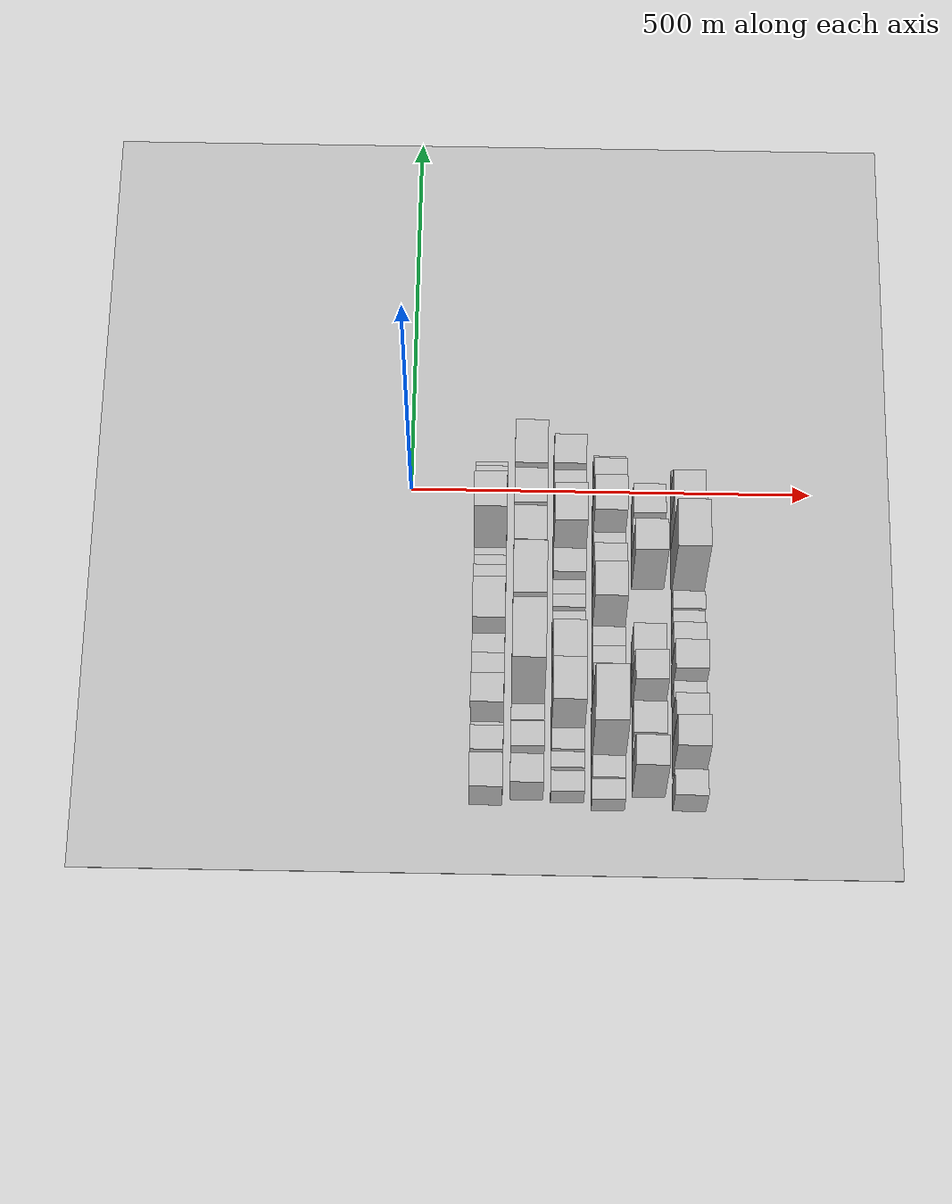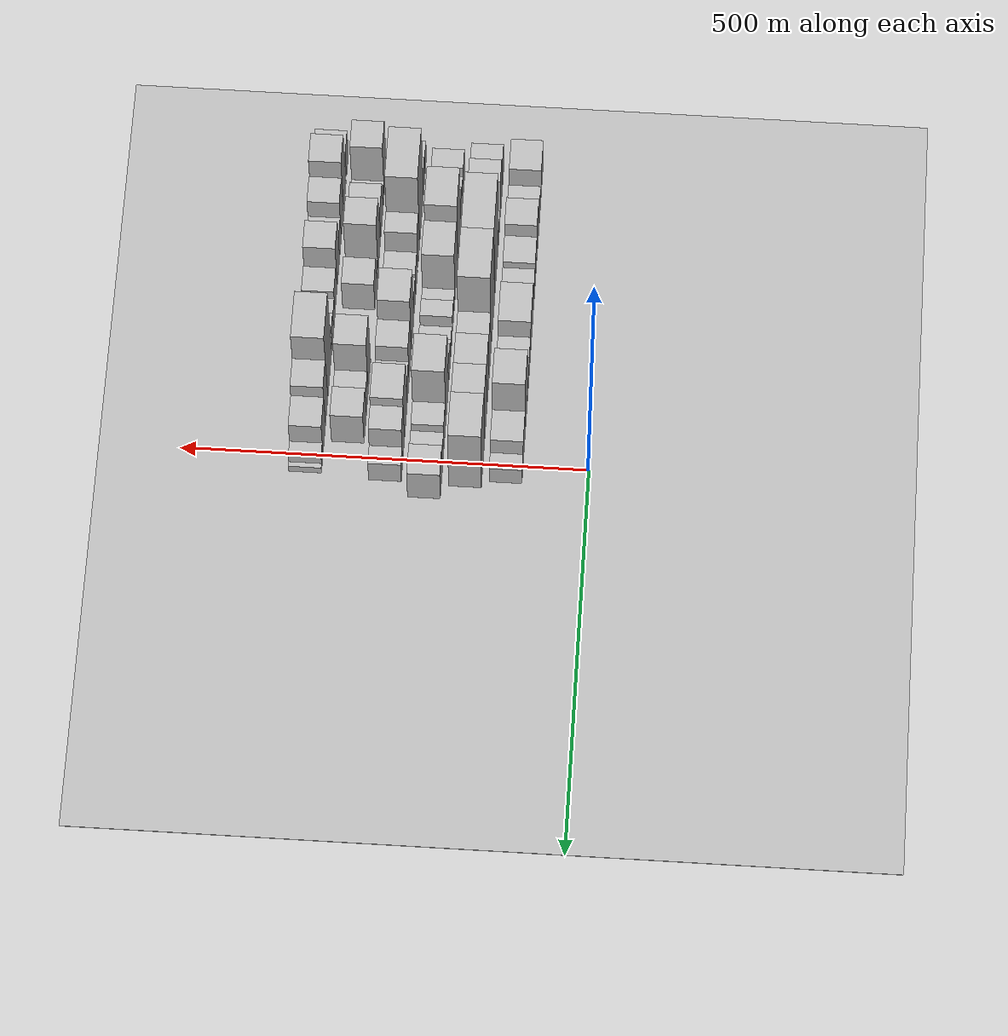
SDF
<sdf version="1.6">
 <world name="default">
  <include><name>ground_plane_1</name><uri>model://HANNAS_ground_plane</uri></include>
  <include>
   <name>ground_plane_2</name>
   <uri>model://HANNAS_ground_plane</uri>
   <pose>100 0 0  0 0 0</pose>
  </include>
  <model name="building_12">
   <static>1</static>
   <pose>100.0000 -392.6815 0 0.000000 0.000000 0.000000</pose>
   <link name="link">
    <pose>0 0 36.00 0 0 0</pose>
    <collision name="collision"><geometry><box><size>40.0000 42.4365 72.0000</size></box></geometry></collision>
    <visual name="visual">
     <cast_shadows>0</cast_shadows>
     <geometry><box><size>40.0000 42.4365 72.0000</size></box></geometry>
     <material>
      <script>
       <uri>model://HANNAS_wall/materials/scripts</uri>
       <uri>model://HANNAS_wall/materials/textures</uri>
       <name>vrc/HANNAS_wall</name>
      </script>
     </material>
    </visual>
   </link>
  </model>
  <model name="building_13">
   <static>1</static>
   <pose>100.0000 -365.9398 0 0.000000 0.000000 0.000000</pose>
   <link name="link">
    <pose>0 0 13.50 0 0 0</pose>
    <collision name="collision"><geometry><box><size>40.0000 11.0469 27.0000</size></box></geometry></collision>
    <visual name="visual">
     <cast_shadows>0</cast_shadows>
     <geometry><box><size>40.0000 11.0469 27.0000</size></box></geometry>
     <material>
      <script>
       <uri>model://HANNAS_wall/materials/scripts</uri>
       <uri>model://HANNAS_wall/materials/textures</uri>
       <name>vrc/HANNAS_wall</name>
      </script>
     </material>
    </visual>
   </link>
  </model>
  <model name="building_14">
   <static>1</static>
   <pose>100.0000 -345.2138 0 0.000000 0.000000 0.000000</pose>
   <link name="link">
    <pose>0 0 25.50 0 0 0</pose>
    <collision name="collision"><geometry><box><size>40.0000 30.4052 51.0000</size></box></geometry></collision>
    <visual name="visual">
     <cast_shadows>0</cast_shadows>
     <geometry><box><size>40.0000 30.4052 51.0000</size></box></geometry>
     <material>
      <script>
       <uri>model://HANNAS_wall/materials/scripts</uri>
       <uri>model://HANNAS_wall/materials/textures</uri>
       <name>vrc/HANNAS_wall</name>
      </script>
     </material>
    </visual>
   </link>
  </model>
  <model name="building_15">
   <static>1</static>
   <pose>100.0000 -323.7918 0 0.000000 0.000000 0.000000</pose>
   <link name="link">
    <pose>0 0 13.50 0 0 0</pose>
    <collision name="collision"><geometry><box><size>40.0000 12.4387 27.0000</size></box></geometry></collision>
    <visual name="visual">
     <cast_shadows>0</cast_shadows>
     <geometry><box><size>40.0000 12.4387 27.0000</size></box></geometry>
     <material>
      <script>
       <uri>model://HANNAS_wall/materials/scripts</uri>
       <uri>model://HANNAS_wall/materials/textures</uri>
       <name>vrc/HANNAS_wall</name>
      </script>
     </material>
    </visual>
   </link>
  </model>
  <model name="building_16">
   <static>1</static>
   <pose>100.0000 -299.1559 0 0.000000 0.000000 0.000000</pose>
   <link name="link">
    <pose>0 0 49.50 0 0 0</pose>
    <collision name="collision"><geometry><box><size>40.0000 36.8331 99.0000</size></box></geometry></collision>
    <visual name="visual">
     <cast_shadows>0</cast_shadows>
     <geometry><box><size>40.0000 36.8331 99.0000</size></box></geometry>
     <material>
      <script>
       <uri>model://HANNAS_wall/materials/scripts</uri>
       <uri>model://HANNAS_wall/materials/textures</uri>
       <name>vrc/HANNAS_wall</name>
      </script>
     </material>
    </visual>
   </link>
  </model>
  <model name="building_17">
   <static>1</static>
   <pose>100.0000 -262.3806 0 0.000000 0.000000 0.000000</pose>
   <link name="link">
    <pose>0 0 34.50 0 0 0</pose>
    <collision name="collision"><geometry><box><size>40.0000 36.7175 69.0000</size></box></geometry></collision>
    <visual name="visual">
     <cast_shadows>0</cast_shadows>
     <geometry><box><size>40.0000 36.7175 69.0000</size></box></geometry>
     <material>
      <script>
       <uri>model://HANNAS_wall/materials/scripts</uri>
       <uri>model://HANNAS_wall/materials/textures</uri>
       <name>vrc/HANNAS_wall</name>
      </script>
     </material>
    </visual>
   </link>
  </model>
  <model name="building_18">
   <static>1</static>
   <pose>100.0000 -228.6835 0 0.000000 0.000000 0.000000</pose>
   <link name="link">
    <pose>0 0 27.00 0 0 0</pose>
    <collision name="collision"><geometry><box><size>40.0000 30.6767 54.0000</size></box></geometry></collision>
    <visual name="visual">
     <cast_shadows>0</cast_shadows>
     <geometry><box><size>40.0000 30.6767 54.0000</size></box></geometry>
     <material>
      <script>
       <uri>model://HANNAS_wall/materials/scripts</uri>
       <uri>model://HANNAS_wall/materials/textures</uri>
       <name>vrc/HANNAS_wall</name>
      </script>
     </material>
    </visual>
   </link>
  </model>
  <model name="building_19">
   <static>1</static>
   <pose>100.0000 -179.8396 0 0.000000 0.000000 0.000000</pose>
   <link name="link">
    <pose>0 0 45.00 0 0 0</pose>
    <collision name="collision"><geometry><box><size>40.0000 53.0111 90.0000</size></box></geometry></collision>
    <visual name="visual">
     <cast_shadows>0</cast_shadows>
     <geometry><box><size>40.0000 53.0111 90.0000</size></box></geometry>
     <material>
      <script>
       <uri>model://HANNAS_wall/materials/scripts</uri>
       <uri>model://HANNAS_wall/materials/textures</uri>
       <name>vrc/HANNAS_wall</name>
      </script>
     </material>
    </visual>
   </link>
  </model>
  <model name="building_20">
   <static>1</static>
   <pose>100.0000 -136.5912 0 0.000000 0.000000 0.000000</pose>
   <link name="link">
    <pose>0 0 27.00 0 0 0</pose>
    <collision name="collision"><geometry><box><size>40.0000 27.4857 54.0000</size></box></geometry></collision>
    <visual name="visual">
     <cast_shadows>0</cast_shadows>
     <geometry><box><size>40.0000 27.4857 54.0000</size></box></geometry>
     <material>
      <script>
       <uri>model://HANNAS_wall/materials/scripts</uri>
       <uri>model://HANNAS_wall/materials/textures</uri>
       <name>vrc/HANNAS_wall</name>
      </script>
     </material>
    </visual>
   </link>
  </model>
  <model name="building_21">
   <static>1</static>
   <pose>100.0000 -112.8371 0 0.000000 0.000000 0.000000</pose>
   <link name="link">
    <pose>0 0 18.00 0 0 0</pose>
    <collision name="collision"><geometry><box><size>40.0000 20.0225 36.0000</size></box></geometry></collision>
    <visual name="visual">
     <cast_shadows>0</cast_shadows>
     <geometry><box><size>40.0000 20.0225 36.0000</size></box></geometry>
     <material>
      <script>
       <uri>model://HANNAS_wall/materials/scripts</uri>
       <uri>model://HANNAS_wall/materials/textures</uri>
       <name>vrc/HANNAS_wall</name>
      </script>
     </material>
    </visual>
   </link>
  </model>
  <model name="building_22">
   <static>1</static>
   <pose>100.0000 -91.7197 0 0.000000 0.000000 0.000000</pose>
   <link name="link">
    <pose>0 0 10.50 0 0 0</pose>
    <collision name="collision"><geometry><box><size>40.0000 10.2122 21.0000</size></box></geometry></collision>
    <visual name="visual">
     <cast_shadows>0</cast_shadows>
     <geometry><box><size>40.0000 10.2122 21.0000</size></box></geometry>
     <material>
      <script>
       <uri>model://HANNAS_wall/materials/scripts</uri>
       <uri>model://HANNAS_wall/materials/textures</uri>
       <name>vrc/HANNAS_wall</name>
      </script>
     </material>
    </visual>
   </link>
  </model>
  <model name="building_23">
   <static>1</static>
   <pose>100.0000 -63.3768 0 0.000000 0.000000 0.000000</pose>
   <link name="link">
    <pose>0 0 75.00 0 0 0</pose>
    <collision name="collision"><geometry><box><size>40.0000 46.4738 150.0000</size></box></geometry></collision>
    <visual name="visual">
     <cast_shadows>0</cast_shadows>
     <geometry><box><size>40.0000 46.4738 150.0000</size></box></geometry>
     <material>
      <script>
       <uri>model://HANNAS_wall/materials/scripts</uri>
       <uri>model://HANNAS_wall/materials/textures</uri>
       <name>vrc/HANNAS_wall</name>
      </script>
     </material>
    </visual>
   </link>
  </model>
  <model name="building_24">
   <static>1</static>
   <pose>100.0000 -19.8000 0 0.000000 0.000000 0.000000</pose>
   <link name="link">
    <pose>0 0 37.50 0 0 0</pose>
    <collision name="collision"><geometry><box><size>40.0000 40.6798 75.0000</size></box></geometry></collision>
    <visual name="visual">
     <cast_shadows>0</cast_shadows>
     <geometry><box><size>40.0000 40.6798 75.0000</size></box></geometry>
     <material>
      <script>
       <uri>model://HANNAS_wall/materials/scripts</uri>
       <uri>model://HANNAS_wall/materials/textures</uri>
       <name>vrc/HANNAS_wall</name>
      </script>
     </material>
    </visual>
   </link>
  </model>
  <model name="building_25">
   <static>1</static>
   <pose>100.0000 11.3328 0 0.000000 0.000000 0.000000</pose>
   <link name="link">
    <pose>0 0 19.50 0 0 0</pose>
    <collision name="collision"><geometry><box><size>40.0000 21.5857 39.0000</size></box></geometry></collision>
    <visual name="visual">
     <cast_shadows>0</cast_shadows>
     <geometry><box><size>40.0000 21.5857 39.0000</size></box></geometry>
     <material>
      <script>
       <uri>model://HANNAS_wall/materials/scripts</uri>
       <uri>model://HANNAS_wall/materials/textures</uri>
       <name>vrc/HANNAS_wall</name>
      </script>
     </material>
    </visual>
   </link>
  </model>
  <model name="building_62">
   <static>1</static>
   <pose>149.0000 -388.8332 0 0.000000 0.000000 0.000000</pose>
   <link name="link">
    <pose>0 0 34.50 0 0 0</pose>
    <collision name="collision"><geometry><box><size>40.0000 35.6817 69.0000</size></box></geometry></collision>
    <visual name="visual">
     <cast_shadows>0</cast_shadows>
     <geometry><box><size>40.0000 35.6817 69.0000</size></box></geometry>
     <material>
      <script>
       <uri>model://HANNAS_wall/materials/scripts</uri>
       <uri>model://HANNAS_wall/materials/textures</uri>
       <name>vrc/HANNAS_wall</name>
      </script>
     </material>
    </visual>
   </link>
  </model>
  <model name="building_63">
   <static>1</static>
   <pose>149.0000 -355.4125 0 0.000000 0.000000 0.000000</pose>
   <link name="link">
    <pose>0 0 48.00 0 0 0</pose>
    <collision name="collision"><geometry><box><size>40.0000 31.1596 96.0000</size></box></geometry></collision>
    <visual name="visual">
     <cast_shadows>0</cast_shadows>
     <geometry><box><size>40.0000 31.1596 96.0000</size></box></geometry>
     <material>
      <script>
       <uri>model://HANNAS_wall/materials/scripts</uri>
       <uri>model://HANNAS_wall/materials/textures</uri>
       <name>vrc/HANNAS_wall</name>
      </script>
     </material>
    </visual>
   </link>
  </model>
  <model name="building_64">
   <static>1</static>
   <pose>149.0000 -326.5224 0 0.000000 0.000000 0.000000</pose>
   <link name="link">
    <pose>0 0 15.00 0 0 0</pose>
    <collision name="collision"><geometry><box><size>40.0000 16.6204 30.0000</size></box></geometry></collision>
    <visual name="visual">
     <cast_shadows>0</cast_shadows>
     <geometry><box><size>40.0000 16.6204 30.0000</size></box></geometry>
     <material>
      <script>
       <uri>model://HANNAS_wall/materials/scripts</uri>
       <uri>model://HANNAS_wall/materials/textures</uri>
       <name>vrc/HANNAS_wall</name>
      </script>
     </material>
    </visual>
   </link>
  </model>
  <model name="building_65">
   <static>1</static>
   <pose>149.0000 -307.9409 0 0.000000 0.000000 0.000000</pose>
   <link name="link">
    <pose>0 0 19.50 0 0 0</pose>
    <collision name="collision"><geometry><box><size>40.0000 20.5426 39.0000</size></box></geometry></collision>
    <visual name="visual">
     <cast_shadows>0</cast_shadows>
     <geometry><box><size>40.0000 20.5426 39.0000</size></box></geometry>
     <material>
      <script>
       <uri>model://HANNAS_wall/materials/scripts</uri>
       <uri>model://HANNAS_wall/materials/textures</uri>
       <name>vrc/HANNAS_wall</name>
      </script>
     </material>
    </visual>
   </link>
  </model>
  <model name="building_66">
   <static>1</static>
   <pose>149.0000 -260.0572 0 0.000000 0.000000 0.000000</pose>
   <link name="link">
    <pose>0 0 99.00 0 0 0</pose>
    <collision name="collision"><geometry><box><size>40.0000 75.2248 198.0000</size></box></geometry></collision>
    <visual name="visual">
     <cast_shadows>0</cast_shadows>
     <geometry><box><size>40.0000 75.2248 198.0000</size></box></geometry>
     <material>
      <script>
       <uri>model://HANNAS_wall/materials/scripts</uri>
       <uri>model://HANNAS_wall/materials/textures</uri>
       <name>vrc/HANNAS_wall</name>
      </script>
     </material>
    </visual>
   </link>
  </model>
  <model name="building_67">
   <static>1</static>
   <pose>149.0000 -186.1572 0 0.000000 0.000000 0.000000</pose>
   <link name="link">
    <pose>0 0 102.00 0 0 0</pose>
    <collision name="collision"><geometry><box><size>40.0000 66.5752 204.0000</size></box></geometry></collision>
    <visual name="visual">
     <cast_shadows>0</cast_shadows>
     <geometry><box><size>40.0000 66.5752 204.0000</size></box></geometry>
     <material>
      <script>
       <uri>model://HANNAS_wall/materials/scripts</uri>
       <uri>model://HANNAS_wall/materials/textures</uri>
       <name>vrc/HANNAS_wall</name>
      </script>
     </material>
    </visual>
   </link>
  </model>
  <model name="building_68">
   <static>1</static>
   <pose>149.0000 -135.2835 0 0.000000 0.000000 0.000000</pose>
   <link name="link">
    <pose>0 0 55.50 0 0 0</pose>
    <collision name="collision"><geometry><box><size>40.0000 35.1722 111.0000</size></box></geometry></collision>
    <visual name="visual">
     <cast_shadows>0</cast_shadows>
     <geometry><box><size>40.0000 35.1722 111.0000</size></box></geometry>
     <material>
      <script>
       <uri>model://HANNAS_wall/materials/scripts</uri>
       <uri>model://HANNAS_wall/materials/textures</uri>
       <name>vrc/HANNAS_wall</name>
      </script>
     </material>
    </visual>
   </link>
  </model>
  <model name="building_69">
   <static>1</static>
   <pose>149.0000 -95.2438 0 0.000000 0.000000 0.000000</pose>
   <link name="link">
    <pose>0 0 61.50 0 0 0</pose>
    <collision name="collision"><geometry><box><size>40.0000 44.9072 123.0000</size></box></geometry></collision>
    <visual name="visual">
     <cast_shadows>0</cast_shadows>
     <geometry><box><size>40.0000 44.9072 123.0000</size></box></geometry>
     <material>
      <script>
       <uri>model://HANNAS_wall/materials/scripts</uri>
       <uri>model://HANNAS_wall/materials/textures</uri>
       <name>vrc/HANNAS_wall</name>
      </script>
     </material>
    </visual>
   </link>
  </model>
  <model name="building_70">
   <static>1</static>
   <pose>149.0000 -49.8725 0 0.000000 0.000000 0.000000</pose>
   <link name="link">
    <pose>0 0 66.00 0 0 0</pose>
    <collision name="collision"><geometry><box><size>40.0000 45.8354 132.0000</size></box></geometry></collision>
    <visual name="visual">
     <cast_shadows>0</cast_shadows>
     <geometry><box><size>40.0000 45.8354 132.0000</size></box></geometry>
     <material>
      <script>
       <uri>model://HANNAS_wall/materials/scripts</uri>
       <uri>model://HANNAS_wall/materials/textures</uri>
       <name>vrc/HANNAS_wall</name>
      </script>
     </material>
    </visual>
   </link>
  </model>
  <model name="building_71">
   <static>1</static>
   <pose>149.0000 1.8988 0 0.000000 0.000000 0.000000</pose>
   <link name="link">
    <pose>0 0 73.50 0 0 0</pose>
    <collision name="collision"><geometry><box><size>40.0000 57.7072 147.0000</size></box></geometry></collision>
    <visual name="visual">
     <cast_shadows>0</cast_shadows>
     <geometry><box><size>40.0000 57.7072 147.0000</size></box></geometry>
     <material>
      <script>
       <uri>model://HANNAS_wall/materials/scripts</uri>
       <uri>model://HANNAS_wall/materials/textures</uri>
       <name>vrc/HANNAS_wall</name>
      </script>
     </material>
    </visual>
   </link>
  </model>
  <model name="building_107">
   <static>1</static>
   <pose>198.0000 -396.4228 0 0.000000 0.000000 0.000000</pose>
   <link name="link">
    <pose>0 0 22.50 0 0 0</pose>
    <collision name="collision"><geometry><box><size>40.0000 25.8854 45.0000</size></box></geometry></collision>
    <visual name="visual">
     <cast_shadows>0</cast_shadows>
     <geometry><box><size>40.0000 25.8854 45.0000</size></box></geometry>
     <material>
      <script>
       <uri>model://HANNAS_wall/materials/scripts</uri>
       <uri>model://HANNAS_wall/materials/textures</uri>
       <name>vrc/HANNAS_wall</name>
      </script>
     </material>
    </visual>
   </link>
  </model>
  <model name="building_108">
   <static>1</static>
   <pose>198.0000 -366.4644 0 0.000000 0.000000 0.000000</pose>
   <link name="link">
    <pose>0 0 18.00 0 0 0</pose>
    <collision name="collision"><geometry><box><size>40.0000 20.0315 36.0000</size></box></geometry></collision>
    <visual name="visual">
     <cast_shadows>0</cast_shadows>
     <geometry><box><size>40.0000 20.0315 36.0000</size></box></geometry>
     <material>
      <script>
       <uri>model://HANNAS_wall/materials/scripts</uri>
       <uri>model://HANNAS_wall/materials/textures</uri>
       <name>vrc/HANNAS_wall</name>
      </script>
     </material>
    </visual>
   </link>
  </model>
  <model name="building_109">
   <static>1</static>
   <pose>198.0000 -343.0981 0 0.000000 0.000000 0.000000</pose>
   <link name="link">
    <pose>0 0 22.50 0 0 0</pose>
    <collision name="collision"><geometry><box><size>40.0000 26.7010 45.0000</size></box></geometry></collision>
    <visual name="visual">
     <cast_shadows>0</cast_shadows>
     <geometry><box><size>40.0000 26.7010 45.0000</size></box></geometry>
     <material>
      <script>
       <uri>model://HANNAS_wall/materials/scripts</uri>
       <uri>model://HANNAS_wall/materials/textures</uri>
       <name>vrc/HANNAS_wall</name>
      </script>
     </material>
    </visual>
   </link>
  </model>
  <model name="building_110">
   <static>1</static>
   <pose>198.0000 -303.1394 0 0.000000 0.000000 0.000000</pose>
   <link name="link">
    <pose>0 0 73.50 0 0 0</pose>
    <collision name="collision"><geometry><box><size>40.0000 53.2164 147.0000</size></box></geometry></collision>
    <visual name="visual">
     <cast_shadows>0</cast_shadows>
     <geometry><box><size>40.0000 53.2164 147.0000</size></box></geometry>
     <material>
      <script>
       <uri>model://HANNAS_wall/materials/scripts</uri>
       <uri>model://HANNAS_wall/materials/textures</uri>
       <name>vrc/HANNAS_wall</name>
      </script>
     </material>
    </visual>
   </link>
  </model>
  <model name="building_111">
   <static>1</static>
   <pose>198.0000 -244.0218 0 0.000000 0.000000 0.000000</pose>
   <link name="link">
    <pose>0 0 61.50 0 0 0</pose>
    <collision name="collision"><geometry><box><size>40.0000 47.0189 123.0000</size></box></geometry></collision>
    <visual name="visual">
     <cast_shadows>0</cast_shadows>
     <geometry><box><size>40.0000 47.0189 123.0000</size></box></geometry>
     <material>
      <script>
       <uri>model://HANNAS_wall/materials/scripts</uri>
       <uri>model://HANNAS_wall/materials/textures</uri>
       <name>vrc/HANNAS_wall</name>
      </script>
     </material>
    </visual>
   </link>
  </model>
  <model name="building_112">
   <static>1</static>
   <pose>198.0000 -210.6333 0 0.000000 0.000000 0.000000</pose>
   <link name="link">
    <pose>0 0 16.50 0 0 0</pose>
    <collision name="collision"><geometry><box><size>40.0000 19.7582 33.0000</size></box></geometry></collision>
    <visual name="visual">
     <cast_shadows>0</cast_shadows>
     <geometry><box><size>40.0000 19.7582 33.0000</size></box></geometry>
     <material>
      <script>
       <uri>model://HANNAS_wall/materials/scripts</uri>
       <uri>model://HANNAS_wall/materials/textures</uri>
       <name>vrc/HANNAS_wall</name>
      </script>
     </material>
    </visual>
   </link>
  </model>
  <model name="building_113">
   <static>1</static>
   <pose>198.0000 -189.3293 0 0.000000 0.000000 0.000000</pose>
   <link name="link">
    <pose>0 0 21.00 0 0 0</pose>
    <collision name="collision"><geometry><box><size>40.0000 22.8497 42.0000</size></box></geometry></collision>
    <visual name="visual">
     <cast_shadows>0</cast_shadows>
     <geometry><box><size>40.0000 22.8497 42.0000</size></box></geometry>
     <material>
      <script>
       <uri>model://HANNAS_wall/materials/scripts</uri>
       <uri>model://HANNAS_wall/materials/textures</uri>
       <name>vrc/HANNAS_wall</name>
      </script>
     </material>
    </visual>
   </link>
  </model>
  <model name="building_114">
   <static>1</static>
   <pose>198.0000 -160.2730 0 0.000000 0.000000 0.000000</pose>
   <link name="link">
    <pose>0 0 16.50 0 0 0</pose>
    <collision name="collision"><geometry><box><size>40.0000 17.2630 33.0000</size></box></geometry></collision>
    <visual name="visual">
     <cast_shadows>0</cast_shadows>
     <geometry><box><size>40.0000 17.2630 33.0000</size></box></geometry>
     <material>
      <script>
       <uri>model://HANNAS_wall/materials/scripts</uri>
       <uri>model://HANNAS_wall/materials/textures</uri>
       <name>vrc/HANNAS_wall</name>
      </script>
     </material>
    </visual>
   </link>
  </model>
  <model name="building_115">
   <static>1</static>
   <pose>198.0000 -142.2971 0 0.000000 0.000000 0.000000</pose>
   <link name="link">
    <pose>0 0 16.50 0 0 0</pose>
    <collision name="collision"><geometry><box><size>40.0000 18.6886 33.0000</size></box></geometry></collision>
    <visual name="visual">
     <cast_shadows>0</cast_shadows>
     <geometry><box><size>40.0000 18.6886 33.0000</size></box></geometry>
     <material>
      <script>
       <uri>model://HANNAS_wall/materials/scripts</uri>
       <uri>model://HANNAS_wall/materials/textures</uri>
       <name>vrc/HANNAS_wall</name>
      </script>
     </material>
    </visual>
   </link>
  </model>
  <model name="building_116">
   <static>1</static>
   <pose>198.0000 -117.3898 0 0.000000 0.000000 0.000000</pose>
   <link name="link">
    <pose>0 0 30.00 0 0 0</pose>
    <collision name="collision"><geometry><box><size>40.0000 31.1261 60.0000</size></box></geometry></collision>
    <visual name="visual">
     <cast_shadows>0</cast_shadows>
     <geometry><box><size>40.0000 31.1261 60.0000</size></box></geometry>
     <material>
      <script>
       <uri>model://HANNAS_wall/materials/scripts</uri>
       <uri>model://HANNAS_wall/materials/textures</uri>
       <name>vrc/HANNAS_wall</name>
      </script>
     </material>
    </visual>
   </link>
  </model>
  <model name="building_117">
   <static>1</static>
   <pose>198.0000 -77.1536 0 0.000000 0.000000 0.000000</pose>
   <link name="link">
    <pose>0 0 73.50 0 0 0</pose>
    <collision name="collision"><geometry><box><size>40.0000 49.3462 147.0000</size></box></geometry></collision>
    <visual name="visual">
     <cast_shadows>0</cast_shadows>
     <geometry><box><size>40.0000 49.3462 147.0000</size></box></geometry>
     <material>
      <script>
       <uri>model://HANNAS_wall/materials/scripts</uri>
       <uri>model://HANNAS_wall/materials/textures</uri>
       <name>vrc/HANNAS_wall</name>
      </script>
     </material>
    </visual>
   </link>
  </model>
  <model name="building_118">
   <static>1</static>
   <pose>198.0000 -37.0647 0 0.000000 0.000000 0.000000</pose>
   <link name="link">
    <pose>0 0 30.00 0 0 0</pose>
    <collision name="collision"><geometry><box><size>40.0000 30.8316 60.0000</size></box></geometry></collision>
    <visual name="visual">
     <cast_shadows>0</cast_shadows>
     <geometry><box><size>40.0000 30.8316 60.0000</size></box></geometry>
     <material>
      <script>
       <uri>model://HANNAS_wall/materials/scripts</uri>
       <uri>model://HANNAS_wall/materials/textures</uri>
       <name>vrc/HANNAS_wall</name>
      </script>
     </material>
    </visual>
   </link>
  </model>
  <model name="building_119">
   <static>1</static>
   <pose>198.0000 -5.0210 0 0.000000 0.000000 0.000000</pose>
   <link name="link">
    <pose>0 0 24.00 0 0 0</pose>
    <collision name="collision"><geometry><box><size>40.0000 27.2559 48.0000</size></box></geometry></collision>
    <visual name="visual">
     <cast_shadows>0</cast_shadows>
     <geometry><box><size>40.0000 27.2559 48.0000</size></box></geometry>
     <material>
      <script>
       <uri>model://HANNAS_wall/materials/scripts</uri>
       <uri>model://HANNAS_wall/materials/textures</uri>
       <name>vrc/HANNAS_wall</name>
      </script>
     </material>
    </visual>
   </link>
  </model>
  <model name="building_120">
   <static>1</static>
   <pose>198.0000 28.5804 0 0.000000 0.000000 0.000000</pose>
   <link name="link">
    <pose>0 0 34.50 0 0 0</pose>
    <collision name="collision"><geometry><box><size>40.0000 39.9469 69.0000</size></box></geometry></collision>
    <visual name="visual">
     <cast_shadows>0</cast_shadows>
     <geometry><box><size>40.0000 39.9469 69.0000</size></box></geometry>
     <material>
      <script>
       <uri>model://HANNAS_wall/materials/scripts</uri>
       <uri>model://HANNAS_wall/materials/textures</uri>
       <name>vrc/HANNAS_wall</name>
      </script>
     </material>
    </visual>
   </link>
  </model>
  <model name="building_158">
   <static>1</static>
   <pose>247.0000 -405.7730 0 0.000000 0.000000 0.000000</pose>
   <link name="link">
    <pose>0 0 22.50 0 0 0</pose>
    <collision name="collision"><geometry><box><size>40.0000 25.5367 45.0000</size></box></geometry></collision>
    <visual name="visual">
     <cast_shadows>0</cast_shadows>
     <geometry><box><size>40.0000 25.5367 45.0000</size></box></geometry>
     <material>
      <script>
       <uri>model://HANNAS_wall/materials/scripts</uri>
       <uri>model://HANNAS_wall/materials/textures</uri>
       <name>vrc/HANNAS_wall</name>
      </script>
     </material>
    </visual>
   </link>
  </model>
  <model name="building_159">
   <static>1</static>
   <pose>247.0000 -379.1604 0 0.000000 0.000000 0.000000</pose>
   <link name="link">
    <pose>0 0 25.50 0 0 0</pose>
    <collision name="collision"><geometry><box><size>40.0000 27.6885 51.0000</size></box></geometry></collision>
    <visual name="visual">
     <cast_shadows>0</cast_shadows>
     <geometry><box><size>40.0000 27.6885 51.0000</size></box></geometry>
     <material>
      <script>
       <uri>model://HANNAS_wall/materials/scripts</uri>
       <uri>model://HANNAS_wall/materials/textures</uri>
       <name>vrc/HANNAS_wall</name>
      </script>
     </material>
    </visual>
   </link>
  </model>
  <model name="building_160">
   <static>1</static>
   <pose>247.0000 -330.8500 0 0.000000 0.000000 0.000000</pose>
   <link name="link">
    <pose>0 0 88.50 0 0 0</pose>
    <collision name="collision"><geometry><box><size>40.0000 68.9324 177.0000</size></box></geometry></collision>
    <visual name="visual">
     <cast_shadows>0</cast_shadows>
     <geometry><box><size>40.0000 68.9324 177.0000</size></box></geometry>
     <material>
      <script>
       <uri>model://HANNAS_wall/materials/scripts</uri>
       <uri>model://HANNAS_wall/materials/textures</uri>
       <name>vrc/HANNAS_wall</name>
      </script>
     </material>
    </visual>
   </link>
  </model>
  <model name="building_161">
   <static>1</static>
   <pose>247.0000 -278.2361 0 0.000000 0.000000 0.000000</pose>
   <link name="link">
    <pose>0 0 46.50 0 0 0</pose>
    <collision name="collision"><geometry><box><size>40.0000 28.2955 93.0000</size></box></geometry></collision>
    <visual name="visual">
     <cast_shadows>0</cast_shadows>
     <geometry><box><size>40.0000 28.2955 93.0000</size></box></geometry>
     <material>
      <script>
       <uri>model://HANNAS_wall/materials/scripts</uri>
       <uri>model://HANNAS_wall/materials/textures</uri>
       <name>vrc/HANNAS_wall</name>
      </script>
     </material>
    </visual>
   </link>
  </model>
  <model name="building_162">
   <static>1</static>
   <pose>247.0000 -242.5583 0 0.000000 0.000000 0.000000</pose>
   <link name="link">
    <pose>0 0 27.00 0 0 0</pose>
    <collision name="collision"><geometry><box><size>40.0000 31.0600 54.0000</size></box></geometry></collision>
    <visual name="visual">
     <cast_shadows>0</cast_shadows>
     <geometry><box><size>40.0000 31.0600 54.0000</size></box></geometry>
     <material>
      <script>
       <uri>model://HANNAS_wall/materials/scripts</uri>
       <uri>model://HANNAS_wall/materials/textures</uri>
       <name>vrc/HANNAS_wall</name>
      </script>
     </material>
    </visual>
   </link>
  </model>
  <model name="building_163">
   <static>1</static>
   <pose>247.0000 -213.3095 0 0.000000 0.000000 0.000000</pose>
   <link name="link">
    <pose>0 0 24.00 0 0 0</pose>
    <collision name="collision"><geometry><box><size>40.0000 27.4376 48.0000</size></box></geometry></collision>
    <visual name="visual">
     <cast_shadows>0</cast_shadows>
     <geometry><box><size>40.0000 27.4376 48.0000</size></box></geometry>
     <material>
      <script>
       <uri>model://HANNAS_wall/materials/scripts</uri>
       <uri>model://HANNAS_wall/materials/textures</uri>
       <name>vrc/HANNAS_wall</name>
      </script>
     </material>
    </visual>
   </link>
  </model>
  <model name="building_164">
   <static>1</static>
   <pose>247.0000 -171.5485 0 0.000000 0.000000 0.000000</pose>
   <link name="link">
    <pose>0 0 67.50 0 0 0</pose>
    <collision name="collision"><geometry><box><size>40.0000 44.0845 135.0000</size></box></geometry></collision>
    <visual name="visual">
     <cast_shadows>0</cast_shadows>
     <geometry><box><size>40.0000 44.0845 135.0000</size></box></geometry>
     <material>
      <script>
       <uri>model://HANNAS_wall/materials/scripts</uri>
       <uri>model://HANNAS_wall/materials/textures</uri>
       <name>vrc/HANNAS_wall</name>
      </script>
     </material>
    </visual>
   </link>
  </model>
  <model name="building_165">
   <static>1</static>
   <pose>247.0000 -126.2416 0 0.000000 0.000000 0.000000</pose>
   <link name="link">
    <pose>0 0 46.50 0 0 0</pose>
    <collision name="collision"><geometry><box><size>40.0000 36.5292 93.0000</size></box></geometry></collision>
    <visual name="visual">
     <cast_shadows>0</cast_shadows>
     <geometry><box><size>40.0000 36.5292 93.0000</size></box></geometry>
     <material>
      <script>
       <uri>model://HANNAS_wall/materials/scripts</uri>
       <uri>model://HANNAS_wall/materials/textures</uri>
       <name>vrc/HANNAS_wall</name>
      </script>
     </material>
    </visual>
   </link>
  </model>
  <model name="building_166">
   <static>1</static>
   <pose>247.0000 -92.6367 0 0.000000 0.000000 0.000000</pose>
   <link name="link">
    <pose>0 0 27.00 0 0 0</pose>
    <collision name="collision"><geometry><box><size>40.0000 30.6807 54.0000</size></box></geometry></collision>
    <visual name="visual">
     <cast_shadows>0</cast_shadows>
     <geometry><box><size>40.0000 30.6807 54.0000</size></box></geometry>
     <material>
      <script>
       <uri>model://HANNAS_wall/materials/scripts</uri>
       <uri>model://HANNAS_wall/materials/textures</uri>
       <name>vrc/HANNAS_wall</name>
      </script>
     </material>
    </visual>
   </link>
  </model>
  <model name="building_167">
   <static>1</static>
   <pose>247.0000 -50.9040 0 0.000000 0.000000 0.000000</pose>
   <link name="link">
    <pose>0 0 58.50 0 0 0</pose>
    <collision name="collision"><geometry><box><size>40.0000 46.7846 117.0000</size></box></geometry></collision>
    <visual name="visual">
     <cast_shadows>0</cast_shadows>
     <geometry><box><size>40.0000 46.7846 117.0000</size></box></geometry>
     <material>
      <script>
       <uri>model://HANNAS_wall/materials/scripts</uri>
       <uri>model://HANNAS_wall/materials/textures</uri>
       <name>vrc/HANNAS_wall</name>
      </script>
     </material>
    </visual>
   </link>
  </model>
  <model name="building_168">
   <static>1</static>
   <pose>247.0000 -11.6134 0 0.000000 0.000000 0.000000</pose>
   <link name="link">
    <pose>0 0 48.00 0 0 0</pose>
    <collision name="collision"><geometry><box><size>40.0000 31.7965 96.0000</size></box></geometry></collision>
    <visual name="visual">
     <cast_shadows>0</cast_shadows>
     <geometry><box><size>40.0000 31.7965 96.0000</size></box></geometry>
     <material>
      <script>
       <uri>model://HANNAS_wall/materials/scripts</uri>
       <uri>model://HANNAS_wall/materials/textures</uri>
       <name>vrc/HANNAS_wall</name>
      </script>
     </material>
    </visual>
   </link>
  </model>
  <model name="building_169">
   <static>1</static>
   <pose>247.0000 16.3835 0 0.000000 0.000000 0.000000</pose>
   <link name="link">
    <pose>0 0 24.00 0 0 0</pose>
    <collision name="collision"><geometry><box><size>40.0000 24.1973 48.0000</size></box></geometry></collision>
    <visual name="visual">
     <cast_shadows>0</cast_shadows>
     <geometry><box><size>40.0000 24.1973 48.0000</size></box></geometry>
     <material>
      <script>
       <uri>model://HANNAS_wall/materials/scripts</uri>
       <uri>model://HANNAS_wall/materials/textures</uri>
       <name>vrc/HANNAS_wall</name>
      </script>
     </material>
    </visual>
   </link>
  </model>
  <model name="building_211">
   <static>1</static>
   <pose>296.0000 -382.2843 0 0.000000 0.000000 0.000000</pose>
   <link name="link">
    <pose>0 0 61.50 0 0 0</pose>
    <collision name="collision"><geometry><box><size>40.0000 37.3118 123.0000</size></box></geometry></collision>
    <visual name="visual">
     <cast_shadows>0</cast_shadows>
     <geometry><box><size>40.0000 37.3118 123.0000</size></box></geometry>
     <material>
      <script>
       <uri>model://HANNAS_wall/materials/scripts</uri>
       <uri>model://HANNAS_wall/materials/textures</uri>
       <name>vrc/HANNAS_wall</name>
      </script>
     </material>
    </visual>
   </link>
  </model>
  <model name="building_212">
   <static>1</static>
   <pose>296.0000 -353.0375 0 0.000000 0.000000 0.000000</pose>
   <link name="link">
    <pose>0 0 18.00 0 0 0</pose>
    <collision name="collision"><geometry><box><size>40.0000 21.1818 36.0000</size></box></geometry></collision>
    <visual name="visual">
     <cast_shadows>0</cast_shadows>
     <geometry><box><size>40.0000 21.1818 36.0000</size></box></geometry>
     <material>
      <script>
       <uri>model://HANNAS_wall/materials/scripts</uri>
       <uri>model://HANNAS_wall/materials/textures</uri>
       <name>vrc/HANNAS_wall</name>
      </script>
     </material>
    </visual>
   </link>
  </model>
  <model name="building_213">
   <static>1</static>
   <pose>296.0000 -322.3124 0 0.000000 0.000000 0.000000</pose>
   <link name="link">
    <pose>0 0 34.50 0 0 0</pose>
    <collision name="collision"><geometry><box><size>40.0000 40.2683 69.0000</size></box></geometry></collision>
    <visual name="visual">
     <cast_shadows>0</cast_shadows>
     <geometry><box><size>40.0000 40.2683 69.0000</size></box></geometry>
     <material>
      <script>
       <uri>model://HANNAS_wall/materials/scripts</uri>
       <uri>model://HANNAS_wall/materials/textures</uri>
       <name>vrc/HANNAS_wall</name>
      </script>
     </material>
    </visual>
   </link>
  </model>
  <model name="building_214">
   <static>1</static>
   <pose>296.0000 -275.5462 0 0.000000 0.000000 0.000000</pose>
   <link name="link">
    <pose>0 0 61.50 0 0 0</pose>
    <collision name="collision"><geometry><box><size>40.0000 37.2642 123.0000</size></box></geometry></collision>
    <visual name="visual">
     <cast_shadows>0</cast_shadows>
     <geometry><box><size>40.0000 37.2642 123.0000</size></box></geometry>
     <material>
      <script>
       <uri>model://HANNAS_wall/materials/scripts</uri>
       <uri>model://HANNAS_wall/materials/textures</uri>
       <name>vrc/HANNAS_wall</name>
      </script>
     </material>
    </visual>
   </link>
  </model>
  <model name="building_215">
   <static>1</static>
   <pose>296.0000 -247.9790 0 0.000000 0.000000 0.000000</pose>
   <link name="link">
    <pose>0 0 16.50 0 0 0</pose>
    <collision name="collision"><geometry><box><size>40.0000 17.8702 33.0000</size></box></geometry></collision>
    <visual name="visual">
     <cast_shadows>0</cast_shadows>
     <geometry><box><size>40.0000 17.8702 33.0000</size></box></geometry>
     <material>
      <script>
       <uri>model://HANNAS_wall/materials/scripts</uri>
       <uri>model://HANNAS_wall/materials/textures</uri>
       <name>vrc/HANNAS_wall</name>
      </script>
     </material>
    </visual>
   </link>
  </model>
  <model name="building_216">
   <static>1</static>
   <pose>296.0000 -220.7548 0 0.000000 0.000000 0.000000</pose>
   <link name="link">
    <pose>0 0 34.50 0 0 0</pose>
    <collision name="collision"><geometry><box><size>40.0000 36.5781 69.0000</size></box></geometry></collision>
    <visual name="visual">
     <cast_shadows>0</cast_shadows>
     <geometry><box><size>40.0000 36.5781 69.0000</size></box></geometry>
     <material>
      <script>
       <uri>model://HANNAS_wall/materials/scripts</uri>
       <uri>model://HANNAS_wall/materials/textures</uri>
       <name>vrc/HANNAS_wall</name>
      </script>
     </material>
    </visual>
   </link>
  </model>
  <model name="building_217">
   <static>1</static>
   <pose>296.0000 -110.6491 0 0.000000 0.000000 0.000000</pose>
   <link name="link">
    <pose>0 0 64.50 0 0 0</pose>
    <collision name="collision"><geometry><box><size>40.0000 40.5444 129.0000</size></box></geometry></collision>
    <visual name="visual">
     <cast_shadows>0</cast_shadows>
     <geometry><box><size>40.0000 40.5444 129.0000</size></box></geometry>
     <material>
      <script>
       <uri>model://HANNAS_wall/materials/scripts</uri>
       <uri>model://HANNAS_wall/materials/textures</uri>
       <name>vrc/HANNAS_wall</name>
      </script>
     </material>
    </visual>
   </link>
  </model>
  <model name="building_218">
   <static>1</static>
   <pose>296.0000 -74.7933 0 0.000000 0.000000 0.000000</pose>
   <link name="link">
    <pose>0 0 28.50 0 0 0</pose>
    <collision name="collision"><geometry><box><size>40.0000 31.1673 57.0000</size></box></geometry></collision>
    <visual name="visual">
     <cast_shadows>0</cast_shadows>
     <geometry><box><size>40.0000 31.1673 57.0000</size></box></geometry>
     <material>
      <script>
       <uri>model://HANNAS_wall/materials/scripts</uri>
       <uri>model://HANNAS_wall/materials/textures</uri>
       <name>vrc/HANNAS_wall</name>
      </script>
     </material>
    </visual>
   </link>
  </model>
  <model name="building_219">
   <static>1</static>
   <pose>296.0000 -39.6750 0 0.000000 0.000000 0.000000</pose>
   <link name="link">
    <pose>0 0 37.50 0 0 0</pose>
    <collision name="collision"><geometry><box><size>40.0000 39.0691 75.0000</size></box></geometry></collision>
    <visual name="visual">
     <cast_shadows>0</cast_shadows>
     <geometry><box><size>40.0000 39.0691 75.0000</size></box></geometry>
     <material>
      <script>
       <uri>model://HANNAS_wall/materials/scripts</uri>
       <uri>model://HANNAS_wall/materials/textures</uri>
       <name>vrc/HANNAS_wall</name>
      </script>
     </material>
    </visual>
   </link>
  </model>
  <model name="building_258">
   <static>1</static>
   <pose>345.0000 -401.3272 0 0.000000 0.000000 0.000000</pose>
   <link name="link">
    <pose>0 0 31.50 0 0 0</pose>
    <collision name="collision"><geometry><box><size>40.0000 32.2864 63.0000</size></box></geometry></collision>
    <visual name="visual">
     <cast_shadows>0</cast_shadows>
     <geometry><box><size>40.0000 32.2864 63.0000</size></box></geometry>
     <material>
      <script>
       <uri>model://HANNAS_wall/materials/scripts</uri>
       <uri>model://HANNAS_wall/materials/textures</uri>
       <name>vrc/HANNAS_wall</name>
      </script>
     </material>
    </visual>
   </link>
  </model>
  <model name="building_259">
   <static>1</static>
   <pose>345.0000 -358.0312 0 0.000000 0.000000 0.000000</pose>
   <link name="link">
    <pose>0 0 63.00 0 0 0</pose>
    <collision name="collision"><geometry><box><size>40.0000 38.3057 126.0000</size></box></geometry></collision>
    <visual name="visual">
     <cast_shadows>0</cast_shadows>
     <geometry><box><size>40.0000 38.3057 126.0000</size></box></geometry>
     <material>
      <script>
       <uri>model://HANNAS_wall/materials/scripts</uri>
       <uri>model://HANNAS_wall/materials/textures</uri>
       <name>vrc/HANNAS_wall</name>
      </script>
     </material>
    </visual>
   </link>
  </model>
  <model name="building_260">
   <static>1</static>
   <pose>345.0000 -317.3519 0 0.000000 0.000000 0.000000</pose>
   <link name="link">
    <pose>0 0 46.50 0 0 0</pose>
    <collision name="collision"><geometry><box><size>40.0000 35.0529 93.0000</size></box></geometry></collision>
    <visual name="visual">
     <cast_shadows>0</cast_shadows>
     <geometry><box><size>40.0000 35.0529 93.0000</size></box></geometry>
     <material>
      <script>
       <uri>model://HANNAS_wall/materials/scripts</uri>
       <uri>model://HANNAS_wall/materials/textures</uri>
       <name>vrc/HANNAS_wall</name>
      </script>
     </material>
    </visual>
   </link>
  </model>
  <model name="building_261">
   <static>1</static>
   <pose>345.0000 -285.2623 0 0.000000 0.000000 0.000000</pose>
   <link name="link">
    <pose>0 0 27.00 0 0 0</pose>
    <collision name="collision"><geometry><box><size>40.0000 29.1263 54.0000</size></box></geometry></collision>
    <visual name="visual">
     <cast_shadows>0</cast_shadows>
     <geometry><box><size>40.0000 29.1263 54.0000</size></box></geometry>
     <material>
      <script>
       <uri>model://HANNAS_wall/materials/scripts</uri>
       <uri>model://HANNAS_wall/materials/textures</uri>
       <name>vrc/HANNAS_wall</name>
      </script>
     </material>
    </visual>
   </link>
  </model>
  <model name="building_262">
   <static>1</static>
   <pose>345.0000 -252.2790 0 0.000000 0.000000 0.000000</pose>
   <link name="link">
    <pose>0 0 49.50 0 0 0</pose>
    <collision name="collision"><geometry><box><size>40.0000 36.8403 99.0000</size></box></geometry></collision>
    <visual name="visual">
     <cast_shadows>0</cast_shadows>
     <geometry><box><size>40.0000 36.8403 99.0000</size></box></geometry>
     <material>
      <script>
       <uri>model://HANNAS_wall/materials/scripts</uri>
       <uri>model://HANNAS_wall/materials/textures</uri>
       <name>vrc/HANNAS_wall</name>
      </script>
     </material>
    </visual>
   </link>
  </model>
  <model name="building_263">
   <static>1</static>
   <pose>345.0000 -212.1894 0 0.000000 0.000000 0.000000</pose>
   <link name="link">
    <pose>0 0 28.50 0 0 0</pose>
    <collision name="collision"><geometry><box><size>40.0000 33.3389 57.0000</size></box></geometry></collision>
    <visual name="visual">
     <cast_shadows>0</cast_shadows>
     <geometry><box><size>40.0000 33.3389 57.0000</size></box></geometry>
     <material>
      <script>
       <uri>model://HANNAS_wall/materials/scripts</uri>
       <uri>model://HANNAS_wall/materials/textures</uri>
       <name>vrc/HANNAS_wall</name>
      </script>
     </material>
    </visual>
   </link>
  </model>
  <model name="building_264">
   <static>1</static>
   <pose>345.0000 -184.3024 0 0.000000 0.000000 0.000000</pose>
   <link name="link">
    <pose>0 0 19.50 0 0 0</pose>
    <collision name="collision"><geometry><box><size>40.0000 22.4352 39.0000</size></box></geometry></collision>
    <visual name="visual">
     <cast_shadows>0</cast_shadows>
     <geometry><box><size>40.0000 22.4352 39.0000</size></box></geometry>
     <material>
      <script>
       <uri>model://HANNAS_wall/materials/scripts</uri>
       <uri>model://HANNAS_wall/materials/textures</uri>
       <name>vrc/HANNAS_wall</name>
      </script>
     </material>
    </visual>
   </link>
  </model>
  <model name="building_265">
   <static>1</static>
   <pose>345.0000 -161.4504 0 0.000000 0.000000 0.000000</pose>
   <link name="link">
    <pose>0 0 22.50 0 0 0</pose>
    <collision name="collision"><geometry><box><size>40.0000 23.2688 45.0000</size></box></geometry></collision>
    <visual name="visual">
     <cast_shadows>0</cast_shadows>
     <geometry><box><size>40.0000 23.2688 45.0000</size></box></geometry>
     <material>
      <script>
       <uri>model://HANNAS_wall/materials/scripts</uri>
       <uri>model://HANNAS_wall/materials/textures</uri>
       <name>vrc/HANNAS_wall</name>
      </script>
     </material>
    </visual>
   </link>
  </model>
  <model name="building_266">
   <static>1</static>
   <pose>345.0000 -145.0627 0 0.000000 0.000000 0.000000</pose>
   <link name="link">
    <pose>0 0 10.50 0 0 0</pose>
    <collision name="collision"><geometry><box><size>40.0000 9.5067 21.0000</size></box></geometry></collision>
    <visual name="visual">
     <cast_shadows>0</cast_shadows>
     <geometry><box><size>40.0000 9.5067 21.0000</size></box></geometry>
     <material>
      <script>
       <uri>model://HANNAS_wall/materials/scripts</uri>
       <uri>model://HANNAS_wall/materials/textures</uri>
       <name>vrc/HANNAS_wall</name>
      </script>
     </material>
    </visual>
   </link>
  </model>
  <model name="building_267">
   <static>1</static>
   <pose>345.0000 -109.8285 0 0.000000 0.000000 0.000000</pose>
   <link name="link">
    <pose>0 0 82.50 0 0 0</pose>
    <collision name="collision"><geometry><box><size>40.0000 60.9617 165.0000</size></box></geometry></collision>
    <visual name="visual">
     <cast_shadows>0</cast_shadows>
     <geometry><box><size>40.0000 60.9617 165.0000</size></box></geometry>
     <material>
      <script>
       <uri>model://HANNAS_wall/materials/scripts</uri>
       <uri>model://HANNAS_wall/materials/textures</uri>
       <name>vrc/HANNAS_wall</name>
      </script>
     </material>
    </visual>
   </link>
  </model>
  <model name="building_268">
   <static>1</static>
   <pose>345.0000 -60.9549 0 0.000000 0.000000 0.000000</pose>
   <link name="link">
    <pose>0 0 52.50 0 0 0</pose>
    <collision name="collision"><geometry><box><size>40.0000 36.7854 105.0000</size></box></geometry></collision>
    <visual name="visual">
     <cast_shadows>0</cast_shadows>
     <geometry><box><size>40.0000 36.7854 105.0000</size></box></geometry>
     <material>
      <script>
       <uri>model://HANNAS_wall/materials/scripts</uri>
       <uri>model://HANNAS_wall/materials/textures</uri>
       <name>vrc/HANNAS_wall</name>
      </script>
     </material>
    </visual>
   </link>
  </model>
  <model name="building_269">
   <static>1</static>
   <pose>345.0000 -22.4172 0 0.000000 0.000000 0.000000</pose>
   <link name="link">
    <pose>0 0 39.00 0 0 0</pose>
    <collision name="collision"><geometry><box><size>40.0000 40.2900 78.0000</size></box></geometry></collision>
    <visual name="visual">
     <cast_shadows>0</cast_shadows>
     <geometry><box><size>40.0000 40.2900 78.0000</size></box></geometry>
     <material>
      <script>
       <uri>model://HANNAS_wall/materials/scripts</uri>
       <uri>model://HANNAS_wall/materials/textures</uri>
       <name>vrc/HANNAS_wall</name>
      </script>
     </material>
    </visual>
   </link>
  </model>
  <model name="building_270">
   <static>1</static>
   <pose>345.0000 7.3616 0 0.000000 0.000000 0.000000</pose>
   <link name="link">
    <pose>0 0 16.50 0 0 0</pose>
    <collision name="collision"><geometry><box><size>40.0000 19.2677 33.0000</size></box></geometry></collision>
    <visual name="visual">
     <cast_shadows>0</cast_shadows>
     <geometry><box><size>40.0000 19.2677 33.0000</size></box></geometry>
     <material>
      <script>
       <uri>model://HANNAS_wall/materials/scripts</uri>
       <uri>model://HANNAS_wall/materials/textures</uri>
       <name>vrc/HANNAS_wall</name>
      </script>
     </material>
    </visual>
   </link>
  </model>
  <model name="building_271">
   <static>1</static>
   <pose>345.0000 20.0646 0 0.000000 0.000000 0.000000</pose>
   <link name="link">
    <pose>0 0 7.50 0 0 0</pose>
    <collision name="collision"><geometry><box><size>40.0000 6.1383 15.0000</size></box></geometry></collision>
    <visual name="visual">
     <cast_shadows>0</cast_shadows>
     <geometry><box><size>40.0000 6.1383 15.0000</size></box></geometry>
     <material>
      <script>
       <uri>model://HANNAS_wall/materials/scripts</uri>
       <uri>model://HANNAS_wall/materials/textures</uri>
       <name>vrc/HANNAS_wall</name>
      </script>
     </material>
    </visual>
   </link>
  </model>
 </world>
</sdf>
